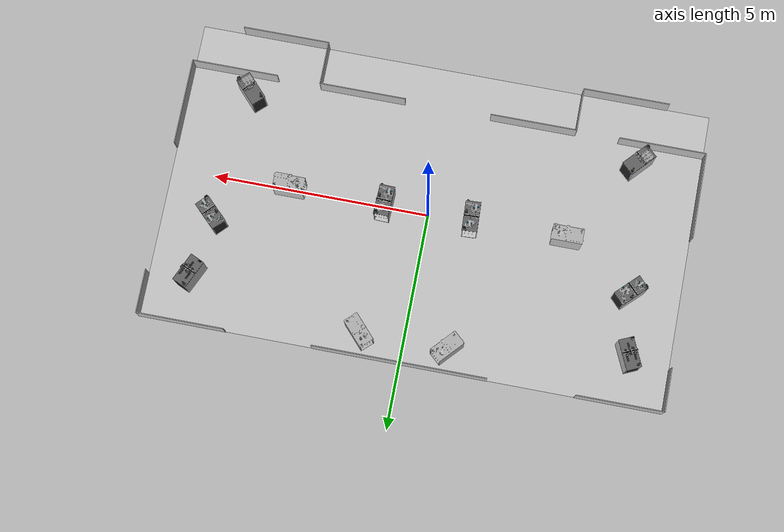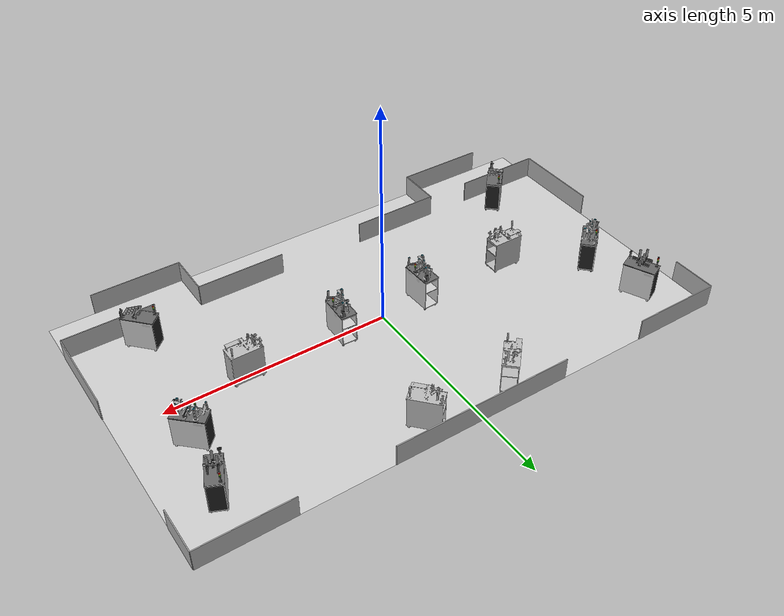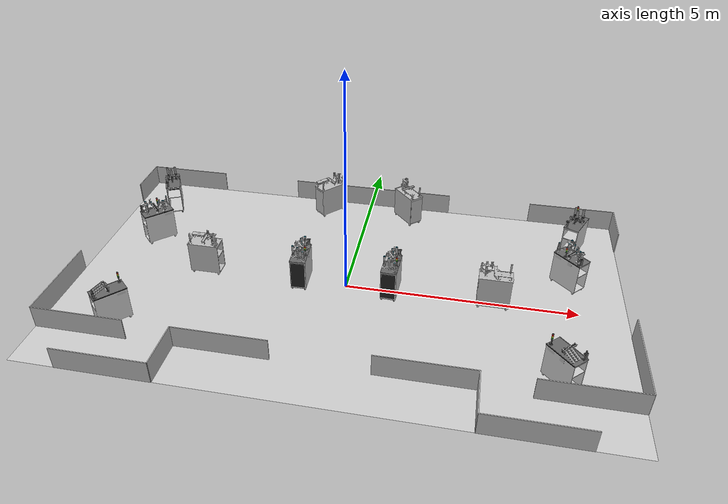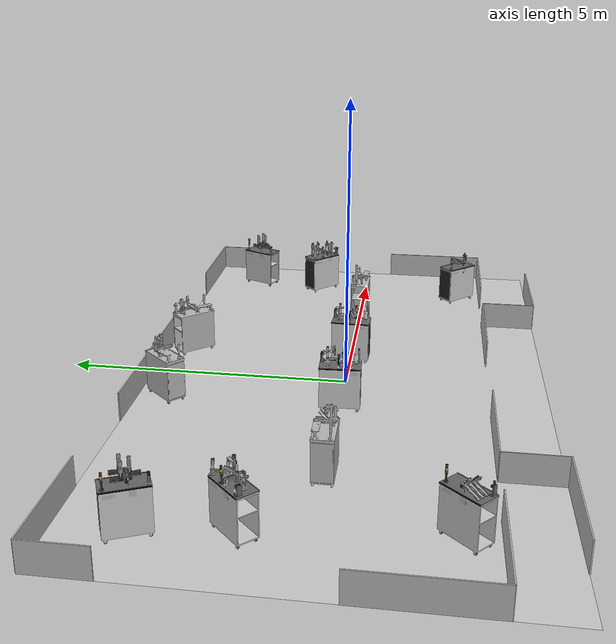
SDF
<sdf version="1.4">
 <world name="Logistics League Field">
  <include><uri>model://sun</uri></include>
  <include><uri>model://logistics_league_field</uri></include>
  <include><uri>model://mps_base</uri><pose>-5 2.4 0 0 0 0.43</pose></include>
  <include><uri>model://mps_base</uri><pose>5 2.4 0 0 0 -0.43</pose></include>
  <include><uri>model://mps_cap</uri><pose>-1 3 0 0 0 2.4</pose></include>
  <include><uri>model://mps_cap</uri><pose>1 3 0 0 0 -2.4</pose></include>
  <include><uri>model://mps_cap</uri><pose>-3.2 0 0 0 0 1.57</pose></include>
  <include><uri>model://mps_cap</uri><pose>3.2 0 0 0 0 -1.57</pose></include>
  <include><uri>model://mps_ring</uri><pose>1 0 0 0 0 3.1</pose></include>
  <include><uri>model://mps_ring</uri><pose>-1 0 0 0 0 -3.1</pose></include>
  <include><uri>model://mps_ring</uri><pose>4.8 1 0 0 0 0.8</pose></include>
  <include><uri>model://mps_ring</uri><pose>-4.8 1 0 0 0 -0.8</pose></include>
  <include><uri>model://mps_delivery</uri><pose>4.5 -2 0 0 0 0.75</pose></include>
  <include><uri>model://mps_delivery</uri><pose>-4.5 -2 0 0 0 -0.75</pose></include>
 </world>
</sdf>

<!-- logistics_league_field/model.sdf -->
<sdf version="1.5">
  <model name="Logistics League Field">
    <static>true</static>
    <link name="field">
      <pose>0 0 0.01 0 0 0</pose>
      <collision name="collision">
        <geometry>
          <plane>
            <normal>0 0 1</normal>
            <size>12 7</size>
          </plane>
        </geometry>
        <surface>
          <friction>
            <ode>
              <mu>100</mu>
              <mu2>50</mu2>
            </ode>
          </friction>
        </surface>
      </collision>
      <visual name="carpet">
        <cast_shadows>false</cast_shadows>
        <geometry>
          <plane>
            <normal>0 0 1</normal>
            <size>12 7</size>
          </plane>
        </geometry>
        <material>
          <script>
            <uri>model://logistics_league_field/materials/scripts/</uri>
            <uri>model://logistics_league_field/materials/textures/</uri>
            <name>Logistics_League_Field/Image</name>
          </script>
        </material>
      </visual>
    </link>

    <link name="wall_bottom_middle_left">
      <pose>-2 -2.5 0.25 0 0 1.570796327</pose>
      <visual name="wall_bottom_middle_left-visual">
        <geometry>
          <box>
			<size>.02 2 .5</size>
          </box>
        </geometry>
        <cast_shadows>false</cast_shadows>
      </visual>
      <collision name="wall_bottom_middle_left-collision">
        <geometry>
		    <box>
			  <size>.02 2 .5</size>
		    </box>
        </geometry>
      </collision>
    </link>

    <link name="wall_bottom_middle_left_down">
      <pose>-3 -3 0.25 0 0 0</pose>
      <visual name="wall_bottom_middle_left_down-visual">
        <geometry>
          <box>
			<size>.02 1 .5</size>
          </box>
        </geometry>
        <cast_shadows>false</cast_shadows>
      </visual>
      <collision name="wall_bottom_middle_left_down-collision">
        <geometry>
		    <box>
			  <size>.02 1 .5</size>
		    </box>
        </geometry>
      </collision>
    </link>

    <link name="wall_bottom_middle_left_outer">
      <pose>-4 -3.5 0.25 0 0 1.570796327</pose>
      <visual name="wall_bottom_middle_left_outer-visual">
        <geometry>
          <box>
			<size>.02 2 .5</size>
          </box>
        </geometry>
        <cast_shadows>false</cast_shadows>
      </visual>
      <collision name="wall_bottom_middle_left_outer-collision">
        <geometry>
		    <box>
			  <size>.02 2 .5</size>
		    </box>
        </geometry>
      </collision>
    </link>

    <link name="wall_bottom_left">
      <pose>-5 -2.5 0.25 0 0 1.570796327</pose>
      <visual name="wall_bottom_left-visual">
        <geometry>
          <box>
			<size>.02 2 .5</size>
          </box>
        </geometry>
        <cast_shadows>false</cast_shadows>
      </visual>
      <collision name="wall_bottom_left-collision">
        <geometry>
		    <box>
			  <size>.02 2 .5</size>
		    </box>
        </geometry>
      </collision>
    </link>

    <link name="wall_bottom_middle_right">
      <pose>2 -2.5 0.25 0 0 1.570796327</pose>
      <visual name="wall_bottom_middle_right-visual">
        <geometry>
          <box>
			<size>.02 2 .5</size>
          </box>
        </geometry>
        <cast_shadows>false</cast_shadows>
      </visual>
      <collision name="wall_bottom_middle_right-collision">
        <geometry>
		    <box>
			  <size>.02 2 .5</size>
		    </box>
        </geometry>
      </collision>
    </link>

    <link name="wall_bottom_middle_right_down">
      <pose>3 -3 0.25 0 0 0</pose>
      <visual name="wall_bottom_middle_right_down-visual">
        <geometry>
          <box>
			<size>.02 1 .5</size>
          </box>
        </geometry>
        <cast_shadows>false</cast_shadows>
      </visual>
      <collision name="wall_bottom_middle_right_down-collision">
        <geometry>
		    <box>
			  <size>.02 1 .5</size>
		    </box>
        </geometry>
      </collision>
    </link>

    <link name="wall_bottom_middle_right_outer">
      <pose>4 -3.5 0.25 0 0 1.570796327</pose>
      <visual name="wall_bottom_middle_right_outer-visual">
        <geometry>
          <box>
			<size>.02 2 .5</size>
          </box>
        </geometry>
        <cast_shadows>false</cast_shadows>
      </visual>
      <collision name="wall_bottom_middle_right_outer-collision">
        <geometry>
		    <box>
			  <size>.02 2 .5</size>
		    </box>
        </geometry>
      </collision>
    </link>

    <link name="wall_bottom_right">
      <pose>5 -2.5 0.25 0 0 1.570796327</pose>
      <visual name="wall_bottom_right-visual">
        <geometry>
          <box>
			<size>.02 2 .5</size>
          </box>
        </geometry>
        <cast_shadows>false</cast_shadows>
      </visual>
      <collision name="wall_bottom_right-collision">
        <geometry>
		    <box>
			  <size>.02 2 .5</size>
		    </box>
        </geometry>
      </collision>
    </link>

    <link name="wall_left_bottom">
      <pose>-6 -1.5 0.25 0 0 0</pose>
      <visual name="wall_left_bottom-visual">
        <geometry>
          <box>
			<size>.02 2 .5</size>
          </box>
        </geometry>
        <cast_shadows>false</cast_shadows>
      </visual>
      <collision name="wall_left_bottom-collision">
        <geometry>
		    <box>
			  <size>.02 2 .5</size>
		    </box>
        </geometry>
      </collision>
    </link>

    <link name="wall_left_top">
      <pose>-6 3 0.25 0 0 0</pose>
      <visual name="wall_left_top-visual">
        <geometry>
          <box>
			<size>.02 1 .5</size>
          </box>
        </geometry>
        <cast_shadows>false</cast_shadows>
      </visual>
      <collision name="wall_left_top-collision">
        <geometry>
		    <box>
			  <size>.02 1 .5</size>
		    </box>
        </geometry>
      </collision>
    </link>

    <link name="wall_right_bottom">
      <pose>6 -1.5 0.25 0 0 0</pose>
      <visual name="wall_right_bottom-visual">
        <geometry>
          <box>
			<size>.02 2 .5</size>
          </box>
        </geometry>
        <cast_shadows>false</cast_shadows>
      </visual>
      <collision name="wall_right_bottom-collision">
        <geometry>
		    <box>
			  <size>.02 2 .5</size>
		    </box>
        </geometry>
      </collision>
    </link>

    <link name="wall_right_top">
      <pose>6 3 0.25 0 0 0</pose>
      <visual name="wall_right_top-visual">
        <geometry>
          <box>
			<size>.02 1 .5</size>
          </box>
        </geometry>
        <cast_shadows>false</cast_shadows>
      </visual>
      <collision name="wall_right_top-collision">
        <geometry>
		    <box>
			  <size>.02 1 .5</size>
		    </box>
        </geometry>
      </collision>
    </link>

    <link name="wall_top_middle">
      <pose>0 3.5 0.25 0 0 1.570796327</pose>
      <visual name="wall_top_middle-visual">
        <geometry>
          <box>
			<size>.02 4 .5</size>
          </box>
        </geometry>
        <cast_shadows>false</cast_shadows>
      </visual>
      <collision name="wall_top_middle-collision">
        <geometry>
		    <box>
			  <size>.02 4 .5</size>
		    </box>
        </geometry>
      </collision>
    </link>

    <link name="wall_top_left">
      <pose>-5 3.5 0.25 0 0 1.570796327</pose>
      <visual name="wall_top_left-visual">
        <geometry>
          <box>
			<size>.02 2 .5</size>
          </box>
        </geometry>
        <cast_shadows>false</cast_shadows>
      </visual>
      <collision name="wall_top_left-collision">
        <geometry>
		    <box>
			  <size>.02 2 .5</size>
		    </box>
        </geometry>
      </collision>
    </link>

    <link name="wall_top_right">
      <pose>5 3.5 0.25 0 0 1.570796327</pose>
      <visual name="wall_top_right-visual">
        <geometry>
          <box>
			<size>.02 2 .5</size>
          </box>
        </geometry>
        <cast_shadows>false</cast_shadows>
      </visual>
      <collision name="wall_top_right-collision">
        <geometry>
		    <box>
			  <size>.02 2 .5</size>
		    </box>
        </geometry>
      </collision>
    </link>

  </model>
</sdf>

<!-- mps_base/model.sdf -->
<sdf version="1.5">
  <model name="mps_base">
    <static>false</static>
    <link name="body">
      <pose>0 0 0.445 0 0 0</pose>
      <gravity>true</gravity>
      <inertial>
        <mass>30</mass>
        <inertia>
	  <!-- according to http://en.wikipedia.org/wiki/List_of_moments_of_inertia for a solid box of width: 0.35, height:0.7, depth: 0.7, mass m=30 -->
          <ixx>2.45</ixx>
          <ixy>0.0</ixy>
          <ixz>0.0</ixz>
          <iyy>1.53125</iyy>
          <iyz>0.0</iyz>
          <izz>1.53125</izz>
        </inertia>
      </inertial>
      <visual name="body-visual">
      	<pose>.172 .35 -0.445 0 0 0</pose>
        <geometry>
          <mesh>
            <uri>model://mps_base/meshes/mps_base.dae</uri>
          </mesh>
        </geometry>
        <cast_shadows>false</cast_shadows>
      </visual>
      <collision name="body-collision">
        <geometry>
		    <box>
		      <size>.35 .70 .91</size>
		    </box>
        </geometry>

      </collision>
    </link>
  </model>
</sdf>

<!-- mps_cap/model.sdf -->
<sdf version="1.5">
  <model name="mps_cap">
    <static>false</static>
    <link name="body">
      <pose>0 0 0.445 0 0 0</pose>
      <gravity>true</gravity>
      <inertial>
        <mass>30</mass>
        <inertia>
	  <!-- according to http://en.wikipedia.org/wiki/List_of_moments_of_inertia for a solid box of width: 0.35, height:0.7, depth: 0.7, mass m=30 -->
          <ixx>2.45</ixx>
          <ixy>0.0</ixy>
          <ixz>0.0</ixz>
          <iyy>1.53125</iyy>
          <iyz>0.0</iyz>
          <izz>1.53125</izz>
        </inertia>
      </inertial>
      <visual name="body-visual">
      	<pose>.172 .35 -0.445 0 0 0</pose>
        <geometry>
          <mesh>
            <uri>model://mps_cap/meshes/mps_cap.dae</uri>
          </mesh>
        </geometry>
        <cast_shadows>false</cast_shadows>
      </visual>
      <collision name="body-collision">
        <geometry>
		    <box>
		      <size>.35 .70 .91</size>
		    </box>
        </geometry>

      </collision>
    </link>
  </model>
</sdf>

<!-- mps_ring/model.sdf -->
<sdf version="1.5">
  <model name="mps_ring">
    <static>false</static>
    <link name="body">
      <pose>0 0 0.445 0 0 0</pose>
      <gravity>true</gravity>
      <inertial>
        <mass>30</mass>
        <inertia>
	  <!-- according to http://en.wikipedia.org/wiki/List_of_moments_of_inertia for a solid box of width: 0.35, height:0.7, depth: 0.7, mass m=30 -->
          <ixx>2.45</ixx>
          <ixy>0.0</ixy>
          <ixz>0.0</ixz>
          <iyy>1.53125</iyy>
          <iyz>0.0</iyz>
          <izz>1.53125</izz>
        </inertia>
      </inertial>
      <visual name="body-visual">
      	<pose>.172 .35 -0.445 0 0 0</pose>
        <geometry>
          <mesh>
            <uri>model://mps_ring/meshes/mps_ring.dae</uri>
          </mesh>
        </geometry>
        <cast_shadows>false</cast_shadows>
      </visual>
      <collision name="body-collision">
        <geometry>
		    <box>
		      <size>.35 .70 .91</size>
		    </box>
        </geometry>

      </collision>
    </link>
  </model>
</sdf>

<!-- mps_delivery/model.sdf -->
<sdf version="1.5">
  <model name="mps_delivery">
    <static>false</static>
    <link name="body">
      <pose>0 0 0.445 0 0 0</pose>
      <gravity>true</gravity>
      <inertial>
        <mass>30</mass>
        <inertia>
	  <!-- according to http://en.wikipedia.org/wiki/List_of_moments_of_inertia for a solid box of width: 0.35, height:0.7, depth: 0.7, mass m=30 -->
          <ixx>2.45</ixx>
          <ixy>0.0</ixy>
          <ixz>0.0</ixz>
          <iyy>1.53125</iyy>
          <iyz>0.0</iyz>
          <izz>1.53125</izz>
        </inertia>
      </inertial>
      <visual name="body-visual">
      	<pose>.172 .35 -0.445 0 0 0</pose>
        <geometry>
          <mesh>
            <uri>model://mps_delivery/meshes/mps_delivery.dae</uri>
          </mesh>
        </geometry>
        <cast_shadows>false</cast_shadows>
      </visual>
      <collision name="body-collision">
        <geometry>
		    <box>
		      <size>.35 .70 .91</size>
		    </box>
        </geometry>

      </collision>
    </link>
  </model>
</sdf>
